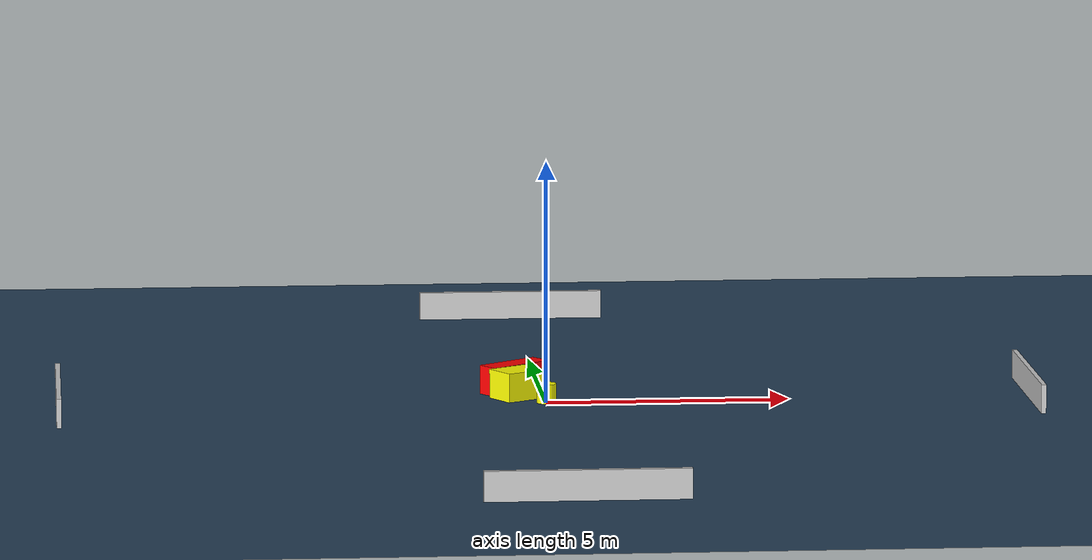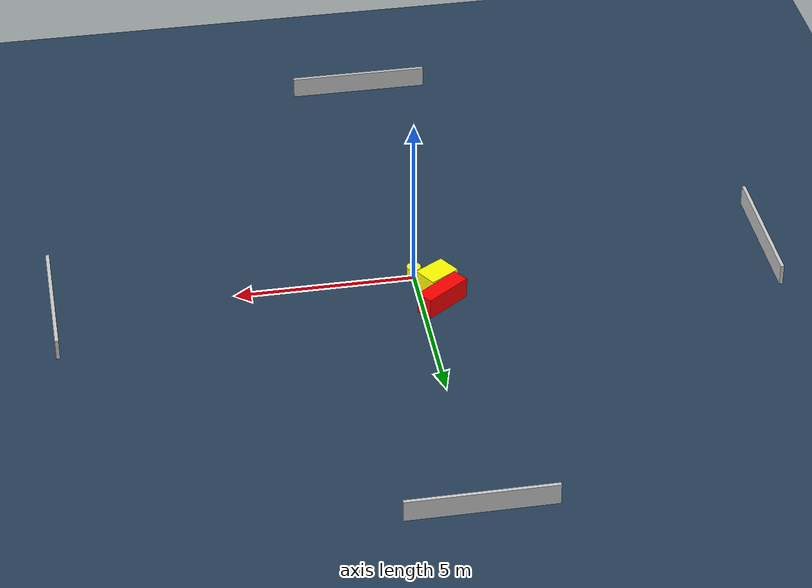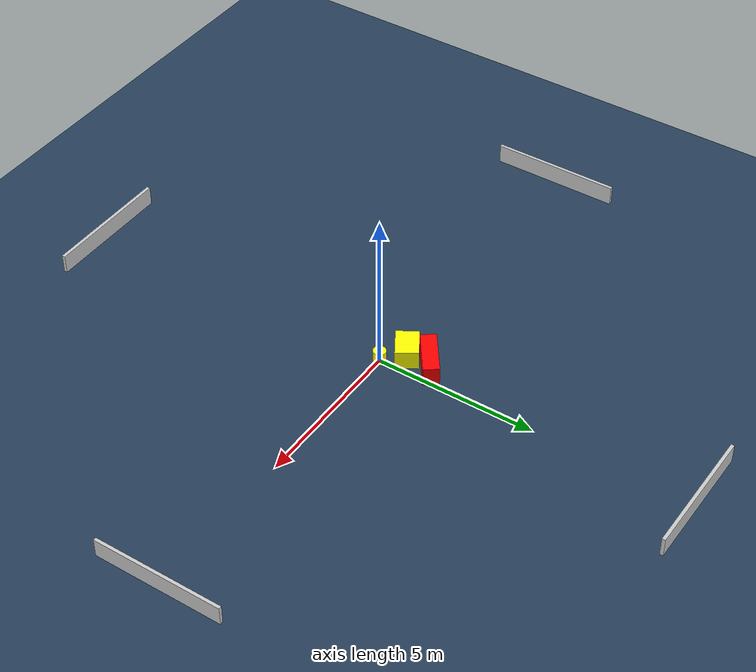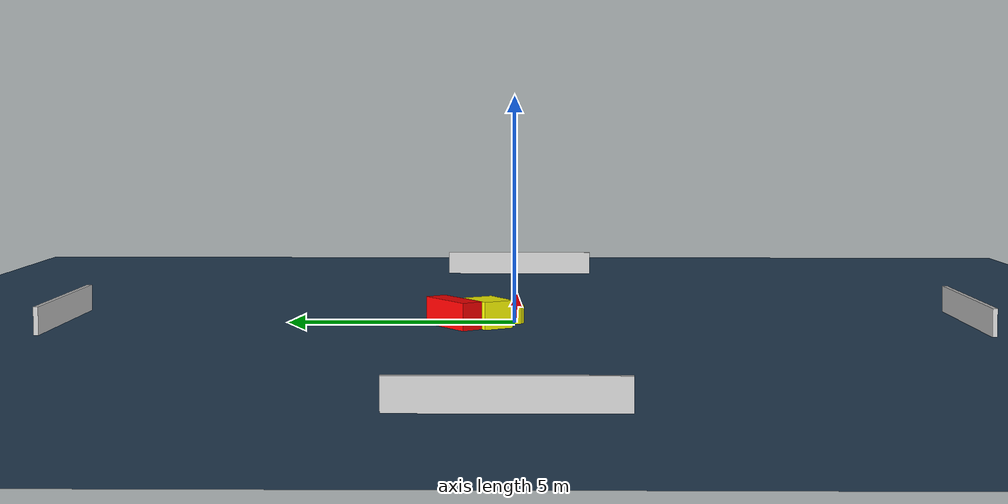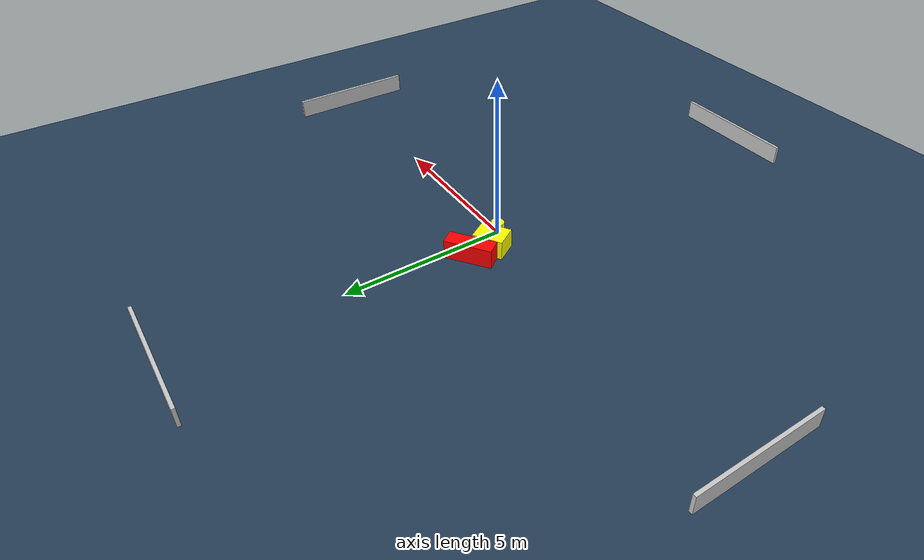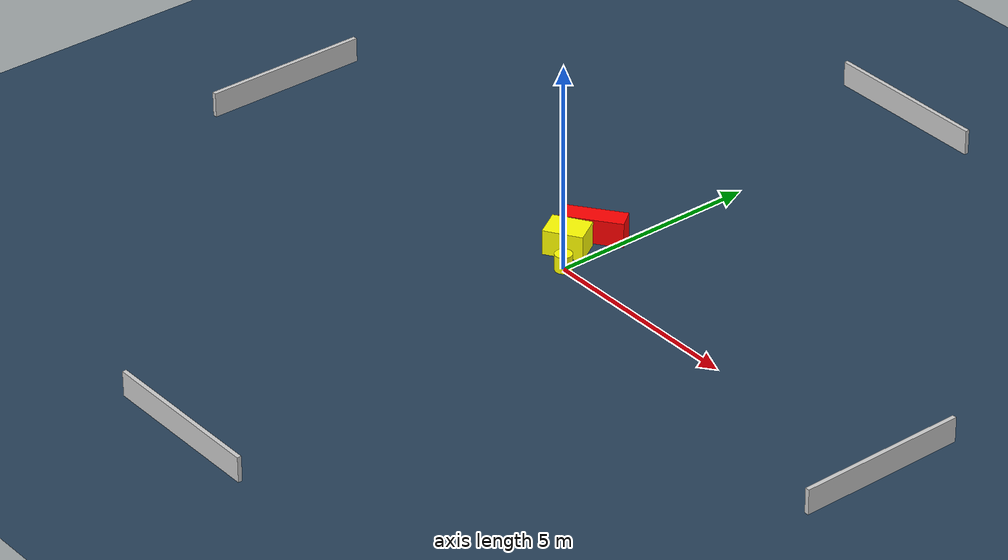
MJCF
<?xml version="1.0" ?>
<mujoco model="generated_environment">
  <option timestep="0.01" integrator="RK4" cone="elliptic"/>
  <default>
    <geom density="1"/>
  </default>
  <asset>
    <texture builtin="gradient" height="3072" name="skybox" rgb1="0.3 0.5 0.7" rgb2="0 0 0" type="skybox" width="512"/>
    <texture builtin="checker" height="300" name="groundplane" rgb1="0.2 0.3 0.4" rgb2="0.1 0.2 0.3" type="2d" width="300"/>
    <material name="groundplane" reflectance="0.2" texrepeat="5 5" texture="groundplane"/>
  </asset>
  <worldbody>
    <light dir="0 0 -1" directional="true" pos="0 0 1.5"/>
    <geom condim="3" friction="0.5 0.005 0.001" material="groundplane" name="floor" pos="0 0 0" size="0 0 0.05" type="plane"/>
    <body name="walls">
      <geom name="wall_1" condim="4" pos="-10.0 0.0 0.3" rgba="0.800000011920929 0.800000011920929 0.800000011920929 1.0" size="0.05 2.0 0.3" type="box"/>
      <geom name="wall_2" condim="4" pos="10.0 0.0 0.3" rgba="0.800000011920929 0.800000011920929 0.800000011920929 1.0" size="0.05 2.0 0.3" type="box"/>
      <geom name="wall_3" condim="4" pos="0.0 -10.0 0.3" rgba="0.800000011920929 0.800000011920929 0.800000011920929 1.0" size="2.0 0.05 0.3" type="box"/>
      <geom name="wall_4" condim="4" pos="0.0 10.0 0.3" rgba="0.800000011920929 0.800000011920929 0.800000011920929 1.0" size="2.0 0.05 0.3" type="box"/>
    </body>
    <body name="robot">
      <joint name="joint_x" type="slide" pos="0 0 0" axis="1 0 0"/>
      <joint name="joint_y" type="slide" pos="0 0 0" axis="0 1 0"/>
      <geom name="robot" type="cylinder" pos="0.0 0.0 0.2" size="0.2 0.2 0.0" mass="5.0" friction="1.0 0.005 0.0001" condim="4" rgba="1.0 1.0 0.0 1.0"/>
    </body>
    <body name="obstacle_1_movable">
      <geom name="obstacle_1_movable" condim="4" pos="-0.5531772686620499 0.5693925935410623 0.3" euler="0 0 31.74674751863829" friction="0.0 0.005 0.001" rgba="1.0 1.0 0.0 1.0" size="0.4624881982839489 0.3475124776625852 0.3" type="box" mass="0.1"/>
      <joint type="free"/>
    </body>
    <body name="obstacle_2_static">
      <geom name="obstacle_2_static" condim="4" pos="-0.5664608430524278 1.3189764060218978 0.3" euler="0 0 126.00946521491652" friction="0.0 0.005 0.001" rgba="1.0 0.0 0.0 1.0" size="0.24220243780412992 0.7247152028841193 0.3" type="box"/>
    </body>
  </worldbody>
  <actuator>
    <motor name="actuator_x" joint="joint_x" gear="1" ctrlrange="-1 1"/>
    <motor name="actuator_y" joint="joint_y" gear="1" ctrlrange="-1 1"/>
  </actuator>
</mujoco>
